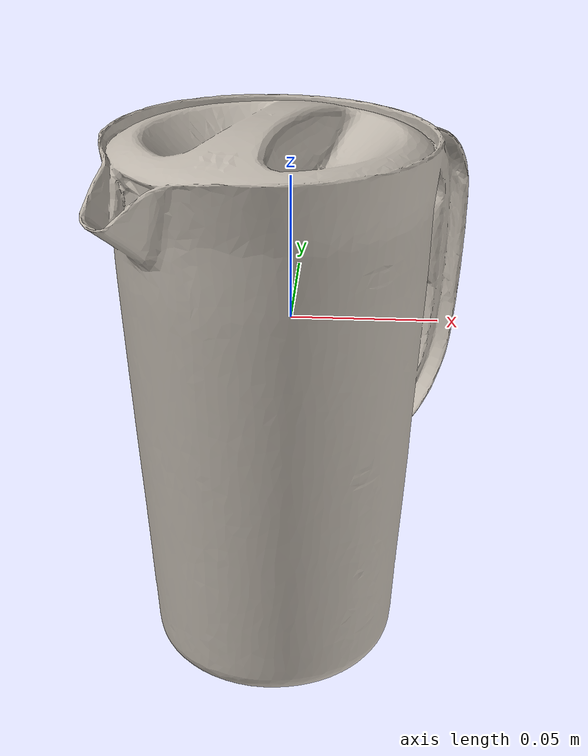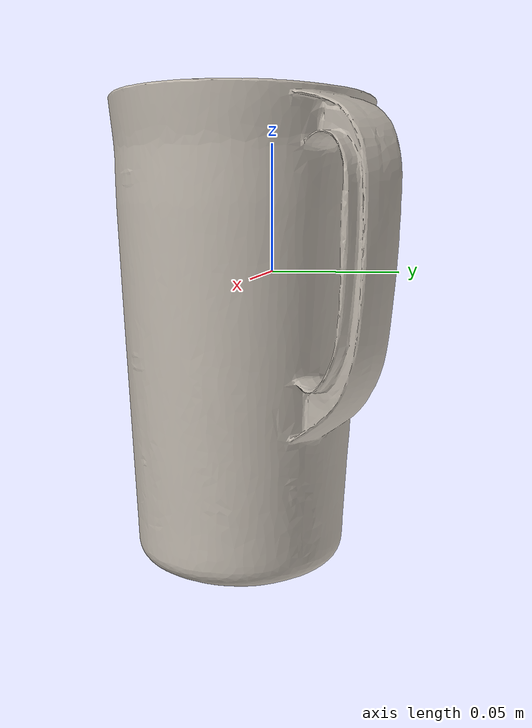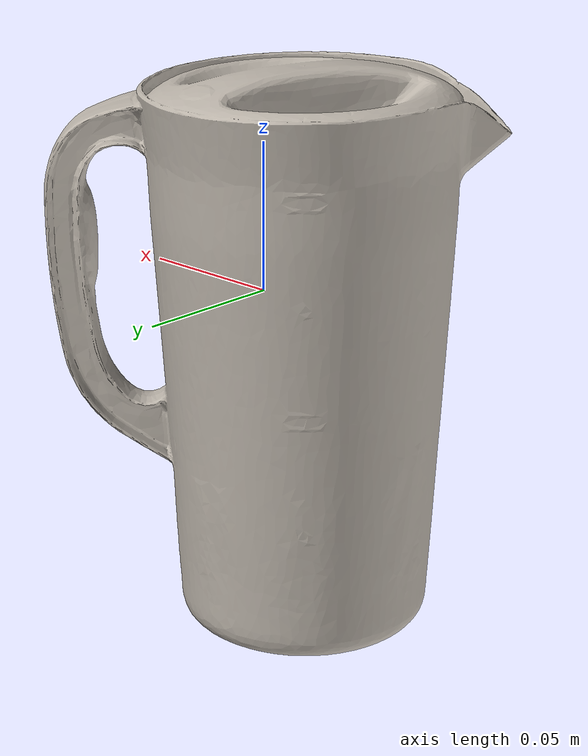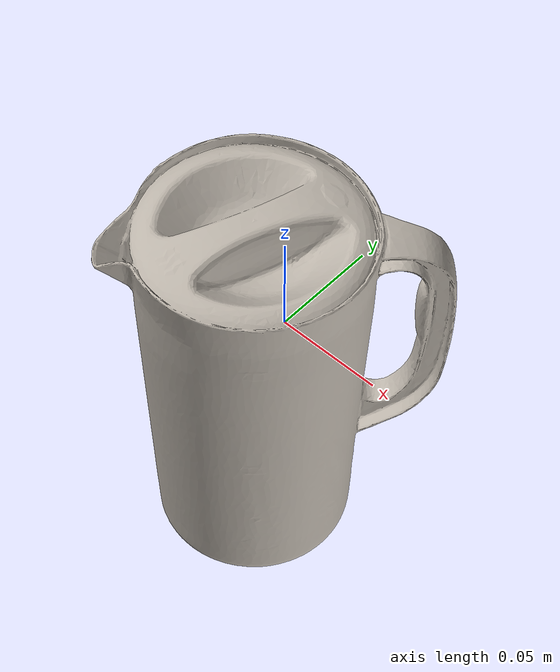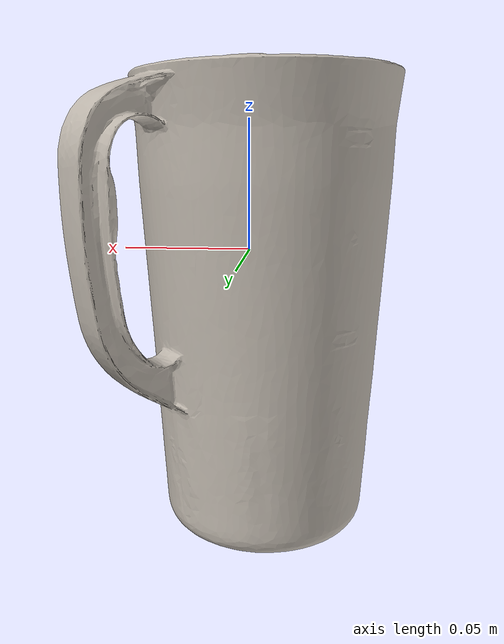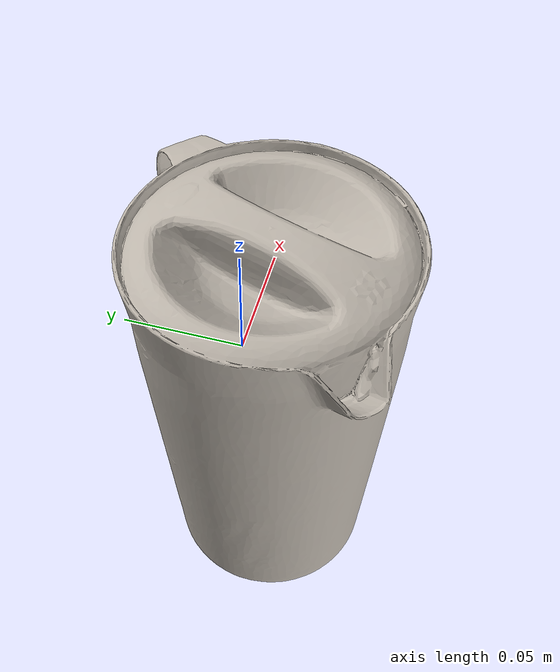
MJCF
<mujoco model="bread">
  <asset>
    <mesh file="nontextured.stl" name="obj_mesh" scale="0.8 0.8 0.8"/>
    <texture file="../../../../../textures/bread.png" type="2d" name="tex-bread" />
    <material name="bread" reflectance="0.7" texrepeat="15 15" texture="tex-bread" texuniform="true"/>
  </asset>
  <worldbody>
    <body>
      <body name="collision">
        <geom pos="0.005829000000000001 -0.0400515 -0.1183715" mesh="obj_mesh" type="mesh" solimp="0.998 0.998 0.001" solref="0.001 1" density="50" friction="0.95 0.3 0.1"  material="bread" group="1" condim="4"/>
      </body>
      <body name="visual">
        <geom pos="0.005829000000000001 -0.0400515 -0.1183715" mesh="obj_mesh" type="mesh" material="bread"  conaffinity="0" contype="0"  group="0" mass="0.0001"/>
        <geom pos="0.005829000000000001 -0.0400515 -0.1183715" mesh="obj_mesh" type="mesh" material="bread"  conaffinity="0" contype="0"  group="1" mass="0.0001"/>
      </body>
      <site rgba="0 0 0 0" size="0.005" pos="0 0 -0.1211935" name="bottom_site"/>
      <site rgba="0 0 0 0" size="0.005" pos="0 0 0.1211935" name="top_site"/>
      <site rgba="0 0 0 0" size="0.005" pos="0.074567 0.07241449999999999 0.1211935" name="horizontal_radius_site"/>
    </body>
  </worldbody>
</mujoco>
